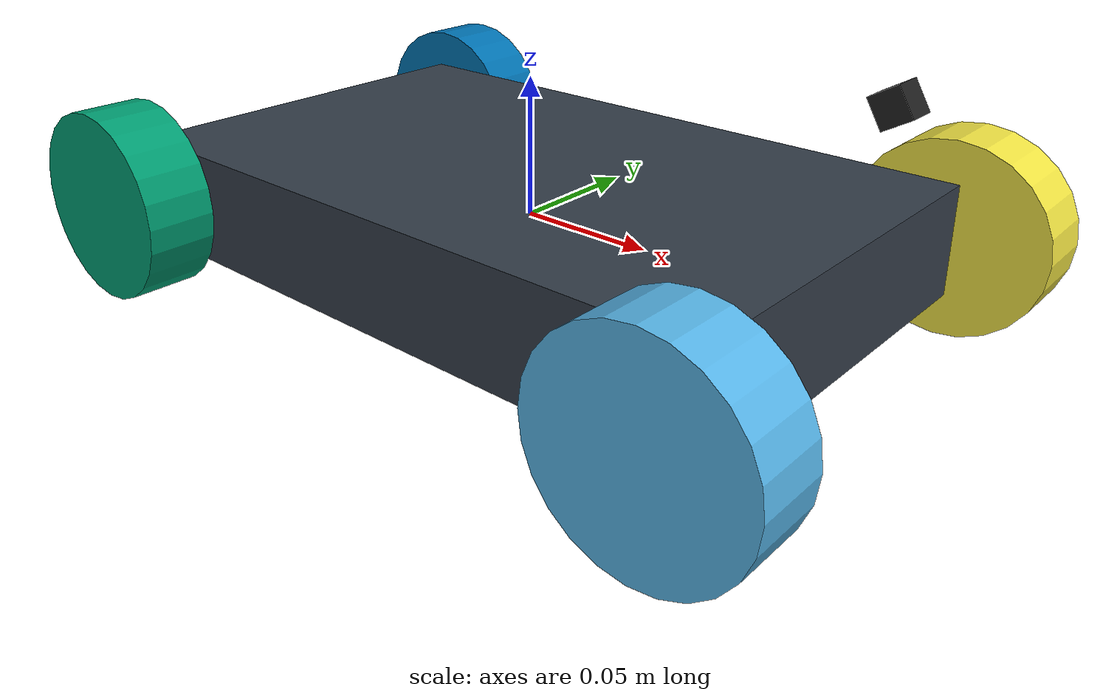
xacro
<?xml version="1.0" ?>
<robot name="rover" xmlns:xacro="http://www.ros.org/wiki/xacro">
  <material name="black">
    <color rgba="0.0 0.0 0.0 1.0"/>
  </material>
  <material name="blue">
    <color rgba="0.203125 0.23828125 0.28515625 1.0"/>
  </material>
  <material name="green">
    <color rgba="0.0 0.8 0.0 1.0"/>
  </material>
  <material name="grey">
    <color rgba="0.2 0.2 0.2 1.0"/>
  </material>
  <material name="orange">
    <color rgba="1.0 0.423529411765 0.0392156862745 1.0"/>
  </material>
  <material name="brown">
    <color rgba="0.870588235294 0.811764705882 0.764705882353 1.0"/>
  </material>
  <material name="red">
    <color rgba="0.80078125 0.12890625 0.1328125 1.0"/>
  </material>
  <material name="white">
    <color rgba="1.0 1.0 1.0 1.0"/>
  </material>

  <gazebo reference="link_chassis">
    <material>Gazebo/Orange</material>
  </gazebo>
  <gazebo reference="link_left_wheel">
    <material>Gazebo/Blue</material>
  </gazebo>
  <gazebo reference="link_right_wheel">
    <material>Gazebo/Blue</material>
  </gazebo>
  <gazebo reference="camera_link">
    <material>Gazebo/Black</material>
  </gazebo>

  <!-- camera -->
  <gazebo reference="camera_link">
    <sensor type="camera" name="main_cam">
      <update_rate>30.0</update_rate>
      <camera name="head">
        <horizontal_fov>1.3962634</horizontal_fov>
        <image>
          <width>800</width>
          <height>800</height>
          <format>R8G8B8</format>
        </image>
        <clip>
          <near>0.02</near>
          <far>300</far>
        </clip>
        <noise>
          <type>gaussian</type>
          <!-- Noise is sampled independently per pixel on each frame.
               That pixel's noise value is added to each of its color
               channels, which at that point lie in the range [0,1]. -->
          <mean>0.0</mean>
          <stddev>0.007</stddev>
        </noise>
      </camera>
      <plugin name="camera_controller" filename="libgazebo_ros_camera.so">
        <alwaysOn>true</alwaysOn>
        <updateRate>60.0</updateRate>
        <cameraName>camera1</cameraName>
        <imageTopicName>image_raw</imageTopicName>
        <cameraInfoTopicName>camera_info</cameraInfoTopicName>
        <frameName>camera_link</frameName>
        <hackBaseline>0.07</hackBaseline>
        <distortionK1>0.0</distortionK1>
        <distortionK2>0.0</distortionK2>
        <distortionK3>0.0</distortionK3>
        <distortionT1>0.0</distortionT1>
        <distortionT2>0.0</distortionT2>
      </plugin>
    </sensor>
  </gazebo>

  <link name="link_chassis">
    <!-- pose and inertial -->
    <pose>0 0 0.1 0 0 0</pose>
    <inertial>
      <mass value="2.5"/>
      <origin rpy="0 0 0" xyz="0 0 0"/>
      <inertia ixx="0.005020" ixy="0" ixz="0" iyy="0.01283" iyz="0" izz="0.017192"/>
    </inertial>
    <!-- body -->
    <collision name="collision_chassis">
      <geometry>
        <box size="0.245 0.15 0.04"/>
      </geometry>
    </collision>
    <visual>
      <origin rpy="0 0 0" xyz="0 0 0"/>
      <geometry>
        <box size="0.245 0.15 0.04"/>
      </geometry>
      <material name="blue"/>
    </visual>

  </link>
  <link name="right_front_wheel">
    <inertial>
      <mass value="0.5"/>
      <origin rpy="0 1.5707 1.5707" xyz="0 0 0"/>
      <inertia ixx="0.000306" ixy="0" ixz="0" iyy="0.0002312" iyz="0" izz="0.000306"/>
    </inertial>
    <collision name="right_front_wheel_collision">
      <origin rpy="0 1.5707 1.5707" xyz="0 0 0"/>
      <geometry>
        <cylinder length="0.025" radius="0.035"/>
      </geometry>
    </collision>
    <visual name="right_front_wheel_visual">
      <origin rpy="0 1.5707 1.5707" xyz="0 0 0"/>
      <geometry>
        <cylinder length="0.025" radius="0.035"/>
      </geometry>
    </visual>
  </link>

  <joint name="right_front_wheel_joint" type="continuous">
    <origin rpy="0 0 0" xyz="0.12 -0.0875 0.0"/>
    <child link="right_front_wheel"/>
    <parent link="link_chassis"/>
    <axis rpy="0 0 0" xyz="0 1 0"/>
    <limit effort="5" velocity="10"/>
    <joint_properties damping="0.0" friction="0.0"/>
  </joint>

  <link name="right_back_wheel">
    <inertial>
      <mass value="0.5"/>
      <origin rpy="0 1.5707 1.5707" xyz="0 0 0"/>
      <inertia ixx="0.0002312" ixy="0" ixz="0" iyy="0.0002312" iyz="0" izz="0.000306"/>
    </inertial>
    <collision name="right_back_wheel_collision">
      <origin rpy="0 1.5707 1.5707" xyz="0 0 0"/>
      <geometry>
        <cylinder length="0.025" radius="0.035"/>
      </geometry>
    </collision>
    <visual name="right_back_wheel_visual">
      <origin rpy="0 1.5707 1.5707" xyz="0 0 0"/>
      <geometry>
        <cylinder length="0.025" radius="0.035"/>
      </geometry>
    </visual>
  </link>

  <joint name="right_back_wheel_joint" type="continuous">
    <origin rpy="0 0 0" xyz="-0.12 -0.0875 0.0"/>
    <child link="right_back_wheel"/>
    <parent link="link_chassis"/>
    <axis rpy="0 0 0" xyz="0 1 0"/>
    <limit effort="5" velocity="10"/>
    <joint_properties damping="0.0" friction="0.0"/>
  </joint>

  <link name="left_front_wheel">
    <inertial>
      <mass value="0.5"/>
      <origin rpy="0 1.5707 1.5707" xyz="0 0 0"/>
      <inertia ixx="0.0002312" ixy="0" ixz="0" iyy="0.0002312" iyz="0" izz="0.000306"/>
    </inertial>
    <collision name="left_front_wheel_collision">
      <origin rpy="0 1.5707 1.5707" xyz="0 0 0"/>
      <geometry>
        <cylinder length="0.025" radius="0.035"/>
      </geometry>
    </collision>
    <visual name="left_front_wheel_visual">
      <origin rpy="0 1.5707 1.5707" xyz="0 0 0"/>
      <geometry>
        <cylinder length="0.025" radius="0.035"/>
      </geometry>
    </visual>
  </link>

  <joint name="left_front_wheel" type="continuous">
    <origin rpy="0 0 0" xyz="0.12 0.0875 0.0"/>
    <child link="left_front_wheel"/>
    <parent link="link_chassis"/>
    <axis rpy="0 0 0" xyz="0 1 0"/>
    <limit effort="5" velocity="10"/>
    <joint_properties damping="0.0" friction="0.0"/>
  </joint>

  <link name="left_back_wheel">
    <inertial>
      <mass value="0.5"/>
      <origin rpy="0 1.5707 1.5707" xyz="0 0 0"/>
      <inertia ixx="0.0002312" ixy="0" ixz="0" iyy="0.0002312" iyz="0" izz="0.000306"/>
    </inertial>
    <collision name="left_back_wheel_collision">
      <origin rpy="0 1.5707 1.5707" xyz="0 0 0"/>
      <geometry>
        <cylinder length="0.025" radius="0.035"/>
      </geometry>
    </collision>
    <visual name="left_back_wheel_visual">
      <origin rpy="0 1.5707 1.5707" xyz="0 0 0"/>
      <geometry>
        <cylinder length="0.025" radius="0.035"/>
      </geometry>
    </visual>
  </link>

  <joint name="left_back_wheel" type="continuous">
    <origin rpy="0 0 0" xyz="-0.12 0.0875 0.0"/>
    <child link="left_back_wheel"/>
    <parent link="link_chassis"/>
    <axis rpy="0 0 0" xyz="0 1 0"/>
    <limit effort="5" velocity="10"/>
    <joint_properties damping="0.0" friction="0.0"/>
  </joint>
  <!-- Camera -->
  <link name="camera_link">
	<inertial>
		<mass value = "1e-5"/>
		<origin xyz="0 0 0" rpy="0 0 0"/>
		<inertia ixx="1e-6" ixy="0" ixz="0" iyy="1e-6" iyz="0" izz="1e-6" />
	</inertial>
    <collision name = "camera_link_collision">
      	<origin xyz="0 0 0" rpy="0 0 0"/>
      	<geometry>
    		<box size="0.01 0.01 0.01"/>
      	</geometry>
    </collision>
    <visual name = "camera_link_visual">
      	<origin xyz="0 0 0" rpy="0 0 0"/>
      	<geometry>
    		<box size="0.01 0.01 0.01"/>
      	</geometry>
     </visual>
  </link>

  <joint name="camera_joint" type="fixed">
	    <origin xyz="0.13 0 0.065" rpy="0 1.0466 0"/>
	    <child link="camera_link"/>
	    <parent link="link_chassis"/>
            <axis rpy = "0 0 0" xyz="0 1 0" />
  </joint>

  <transmission name = "left_back_wheel_trans">
  	<type> transmission_interface/SimpleTransmission </type>
        <joint name = "left_back_wheel">
        	<hardwareInterface> hardware_interface/VelocityJointInterface </hardwareInterface>
        </joint>
        <actuator name = "left_back_wheel_motor">
                <hardwareInterface> hardware_interface/VelocityJointInterface </hardwareInterface>
  		<mechanicalReduction>1</mechanicalReduction>
	</actuator>
  </transmission>
  <transmission name = "left_front_wheel_trans">
  	<type> transmission_interface/SimpleTransmission </type>
        <joint name = "left_front_wheel">
        	<hardwareInterface> hardware_interface/VelocityJointInterface </hardwareInterface>
        </joint>
        <actuator name = "left_front_wheel_motor">
                <hardwareInterface> hardware_interface/VelocityJointInterface </hardwareInterface>
  		<mechanicalReduction>1</mechanicalReduction>
	</actuator>
  </transmission>

  <transmission name = "right_back_wheel_trans">
  	<type> transmission_interface/SimpleTransmission </type>
        <joint name = "right_back_wheel">
        	<hardwareInterface> hardware_interface/VelocityJointInterface </hardwareInterface>
        </joint>
        <actuator name = "right_back_wheel_motor">
                <hardwareInterface> hardware_interface/VelocityJointInterface </hardwareInterface>
  		<mechanicalReduction>1</mechanicalReduction>
	</actuator>
  </transmission>
  <transmission name = "right_front_wheel_trans">
  	<type> transmission_interface/SimpleTransmission </type>
        <joint name = "right_front_wheel">
        	<hardwareInterface> hardware_interface/VelocityJointInterface </hardwareInterface>
        </joint>
        <actuator name = "right_front_wheel_motor">
                <hardwareInterface> hardware_interface/VelocityJointInterface </hardwareInterface>
  		<mechanicalReduction>1</mechanicalReduction>
	</actuator>
  </transmission>

<gazebo>
  <plugin name="gazebo_ros_control" filename="libgazebo_ros_control.so">
    <robotNamespace>/rover</robotNamespace>
    <controlPeriod>0.001</controlPeriod>
    <robotSimType>gazebo_ros_control/DefaultRobotHWSim</robotSimType>
    <legacyModeNS>true</legacyModeNS>
  </plugin>
</gazebo>
</robot>
